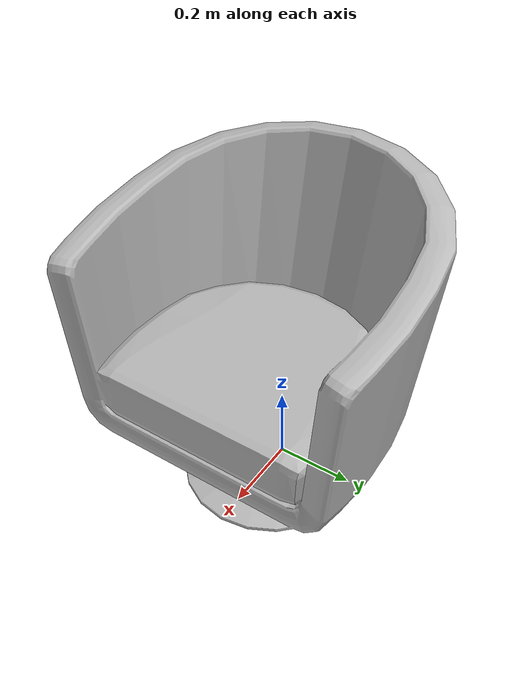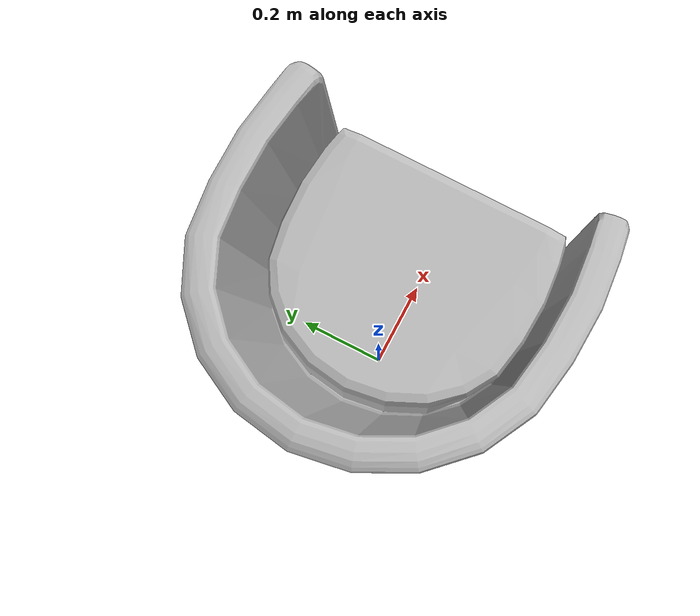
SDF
<?xml version='1.0'?>
<sdf version='1.4'>
  <model name='s__611'>
    <pose>0 0 0 0 0 0</pose>
    <static>true</static>
    <link name='link'>
      <collision name='collision'>
        <pose>0 0 0 0 0 0</pose>
        <geometry>
          <box>
            <size>0.699828 0.77 2</size>
          </box>
        </geometry>
      </collision>
      <visual name='visual'>
        <pose>0 0 0 0 0 0</pose>
        <geometry>
          <mesh><uri>model://s__611/s__611.dae</uri></mesh>
        </geometry>
      </visual>
    </link>
  </model>
</sdf>
